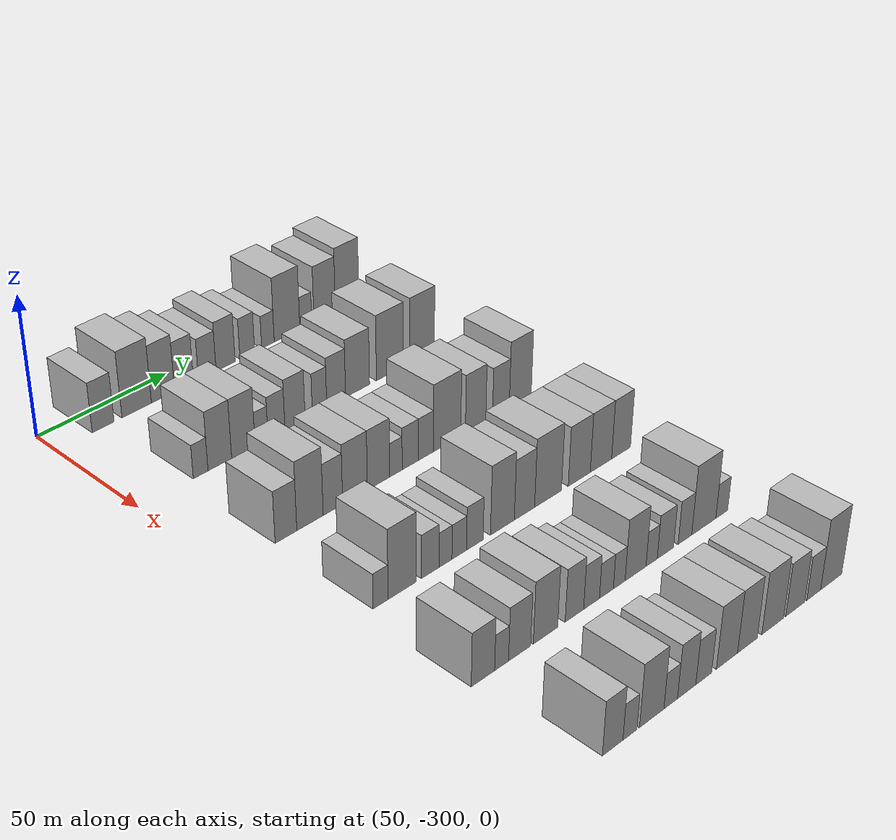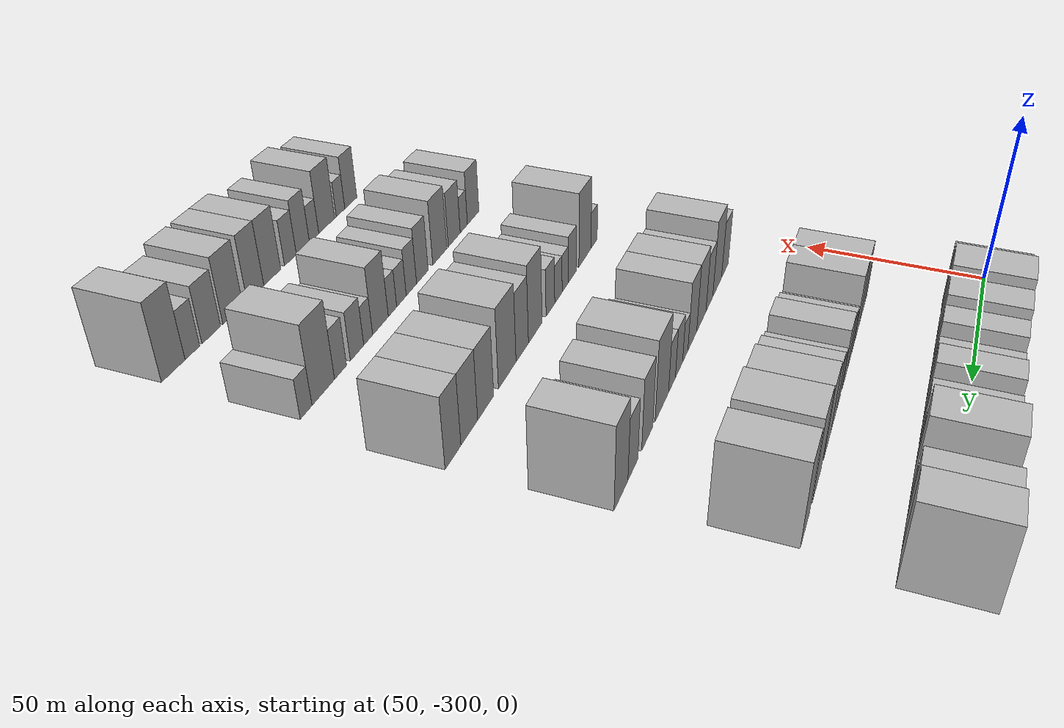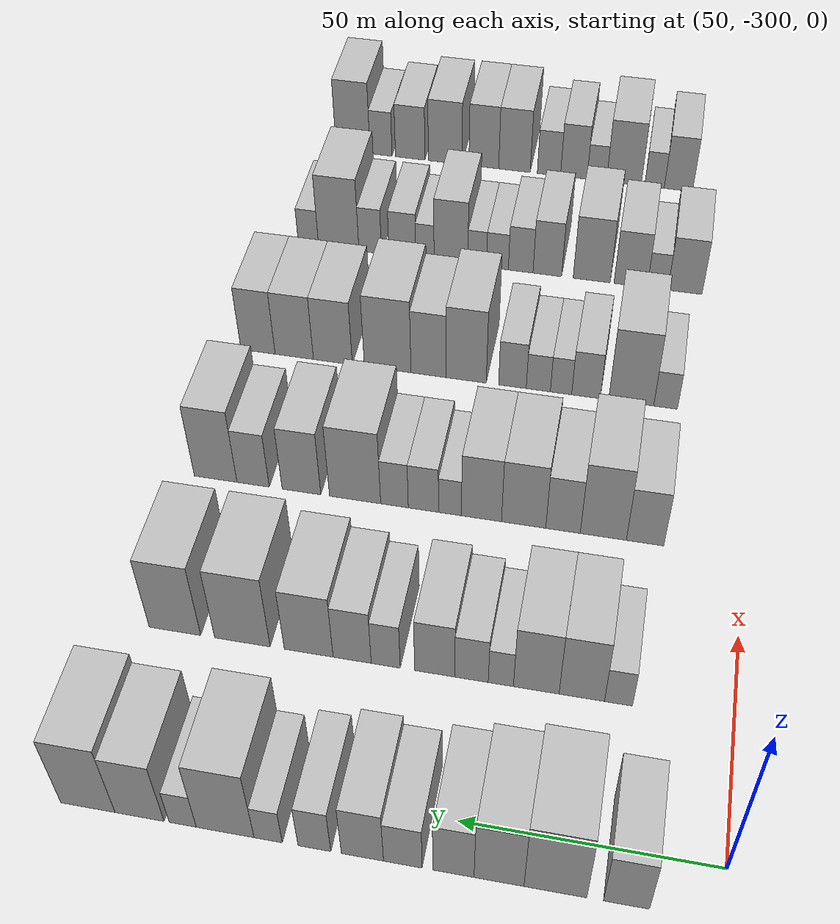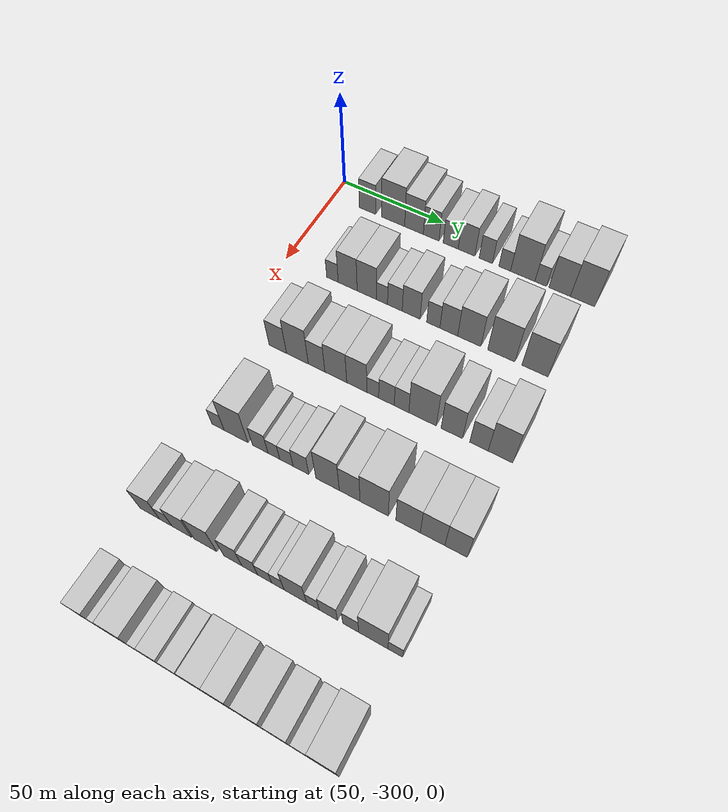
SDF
<sdf version="1.6">
 <world name="default">
  <model name="building_36">
   <static>1</static>
   <pose>50.0000 -282.5300 0 0.000000 0.000000 0.000000</pose>
   <link name="link">
    <pose>0 0 9.00 0 0 0</pose>
    <collision name="collision"><geometry><box><size>20.0000 8.2965 18.0000</size></box></geometry></collision>
    <visual name="visual">
     <cast_shadows>0</cast_shadows>
     <geometry><box><size>20.0000 8.2965 18.0000</size></box></geometry>
     <material>
      <script>
       <uri>model://HANNAS_wall/materials/scripts</uri>
       <uri>model://HANNAS_wall/materials/textures</uri>
       <name>vrc/HANNAS_wall</name>
      </script>
     </material>
    </visual>
   </link>
  </model>
  <model name="building_37">
   <static>1</static>
   <pose>50.0000 -269.6448 0 0.000000 0.000000 0.000000</pose>
   <link name="link">
    <pose>0 0 12.00 0 0 0</pose>
    <collision name="collision"><geometry><box><size>20.0000 11.4740 24.0000</size></box></geometry></collision>
    <visual name="visual">
     <cast_shadows>0</cast_shadows>
     <geometry><box><size>20.0000 11.4740 24.0000</size></box></geometry>
     <material>
      <script>
       <uri>model://HANNAS_wall/materials/scripts</uri>
       <uri>model://HANNAS_wall/materials/textures</uri>
       <name>vrc/HANNAS_wall</name>
      </script>
     </material>
    </visual>
   </link>
  </model>
  <model name="building_38">
   <static>1</static>
   <pose>50.0000 -259.3152 0 0.000000 0.000000 0.000000</pose>
   <link name="link">
    <pose>0 0 10.50 0 0 0</pose>
    <collision name="collision"><geometry><box><size>20.0000 9.1851 21.0000</size></box></geometry></collision>
    <visual name="visual">
     <cast_shadows>0</cast_shadows>
     <geometry><box><size>20.0000 9.1851 21.0000</size></box></geometry>
     <material>
      <script>
       <uri>model://HANNAS_wall/materials/scripts</uri>
       <uri>model://HANNAS_wall/materials/textures</uri>
       <name>vrc/HANNAS_wall</name>
      </script>
     </material>
    </visual>
   </link>
  </model>
  <model name="building_39">
   <static>1</static>
   <pose>50.0000 -250.9108 0 0.000000 0.000000 0.000000</pose>
   <link name="link">
    <pose>0 0 9.00 0 0 0</pose>
    <collision name="collision"><geometry><box><size>20.0000 7.6237 18.0000</size></box></geometry></collision>
    <visual name="visual">
     <cast_shadows>0</cast_shadows>
     <geometry><box><size>20.0000 7.6237 18.0000</size></box></geometry>
     <material>
      <script>
       <uri>model://HANNAS_wall/materials/scripts</uri>
       <uri>model://HANNAS_wall/materials/textures</uri>
       <name>vrc/HANNAS_wall</name>
      </script>
     </material>
    </visual>
   </link>
  </model>
  <model name="building_40">
   <static>1</static>
   <pose>50.0000 -241.4930 0 0.000000 0.000000 0.000000</pose>
   <link name="link">
    <pose>0 0 7.50 0 0 0</pose>
    <collision name="collision"><geometry><box><size>20.0000 7.2121 15.0000</size></box></geometry></collision>
    <visual name="visual">
     <cast_shadows>0</cast_shadows>
     <geometry><box><size>20.0000 7.2121 15.0000</size></box></geometry>
     <material>
      <script>
       <uri>model://HANNAS_wall/materials/scripts</uri>
       <uri>model://HANNAS_wall/materials/textures</uri>
       <name>vrc/HANNAS_wall</name>
      </script>
     </material>
    </visual>
   </link>
  </model>
  <model name="building_41">
   <static>1</static>
   <pose>50.0000 -233.9153 0 0.000000 0.000000 0.000000</pose>
   <link name="link">
    <pose>0 0 9.00 0 0 0</pose>
    <collision name="collision"><geometry><box><size>20.0000 7.9432 18.0000</size></box></geometry></collision>
    <visual name="visual">
     <cast_shadows>0</cast_shadows>
     <geometry><box><size>20.0000 7.9432 18.0000</size></box></geometry>
     <material>
      <script>
       <uri>model://HANNAS_wall/materials/scripts</uri>
       <uri>model://HANNAS_wall/materials/textures</uri>
       <name>vrc/HANNAS_wall</name>
      </script>
     </material>
    </visual>
   </link>
  </model>
  <model name="building_42">
   <static>1</static>
   <pose>50.0000 -224.8299 0 0.000000 0.000000 0.000000</pose>
   <link name="link">
    <pose>0 0 7.50 0 0 0</pose>
    <collision name="collision"><geometry><box><size>20.0000 6.2277 15.0000</size></box></geometry></collision>
    <visual name="visual">
     <cast_shadows>0</cast_shadows>
     <geometry><box><size>20.0000 6.2277 15.0000</size></box></geometry>
     <material>
      <script>
       <uri>model://HANNAS_wall/materials/scripts</uri>
       <uri>model://HANNAS_wall/materials/textures</uri>
       <name>vrc/HANNAS_wall</name>
      </script>
     </material>
    </visual>
   </link>
  </model>
  <model name="building_43">
   <static>1</static>
   <pose>50.0000 -216.0131 0 0.000000 0.000000 0.000000</pose>
   <link name="link">
    <pose>0 0 6.00 0 0 0</pose>
    <collision name="collision"><geometry><box><size>20.0000 5.4060 12.0000</size></box></geometry></collision>
    <visual name="visual">
     <cast_shadows>0</cast_shadows>
     <geometry><box><size>20.0000 5.4060 12.0000</size></box></geometry>
     <material>
      <script>
       <uri>model://HANNAS_wall/materials/scripts</uri>
       <uri>model://HANNAS_wall/materials/textures</uri>
       <name>vrc/HANNAS_wall</name>
      </script>
     </material>
    </visual>
   </link>
  </model>
  <model name="building_44">
   <static>1</static>
   <pose>50.0000 -207.7265 0 0.000000 0.000000 0.000000</pose>
   <link name="link">
    <pose>0 0 12.00 0 0 0</pose>
    <collision name="collision"><geometry><box><size>20.0000 11.1671 24.0000</size></box></geometry></collision>
    <visual name="visual">
     <cast_shadows>0</cast_shadows>
     <geometry><box><size>20.0000 11.1671 24.0000</size></box></geometry>
     <material>
      <script>
       <uri>model://HANNAS_wall/materials/scripts</uri>
       <uri>model://HANNAS_wall/materials/textures</uri>
       <name>vrc/HANNAS_wall</name>
      </script>
     </material>
    </visual>
   </link>
  </model>
  <model name="building_45">
   <static>1</static>
   <pose>50.0000 -199.4984 0 0.000000 0.000000 0.000000</pose>
   <link name="link">
    <pose>0 0 6.00 0 0 0</pose>
    <collision name="collision"><geometry><box><size>20.0000 5.2892 12.0000</size></box></geometry></collision>
    <visual name="visual">
     <cast_shadows>0</cast_shadows>
     <geometry><box><size>20.0000 5.2892 12.0000</size></box></geometry>
     <material>
      <script>
       <uri>model://HANNAS_wall/materials/scripts</uri>
       <uri>model://HANNAS_wall/materials/textures</uri>
       <name>vrc/HANNAS_wall</name>
      </script>
     </material>
    </visual>
   </link>
  </model>
  <model name="building_46">
   <static>1</static>
   <pose>50.0000 -191.0502 0 0.000000 0.000000 0.000000</pose>
   <link name="link">
    <pose>0 0 10.50 0 0 0</pose>
    <collision name="collision"><geometry><box><size>20.0000 9.6072 21.0000</size></box></geometry></collision>
    <visual name="visual">
     <cast_shadows>0</cast_shadows>
     <geometry><box><size>20.0000 9.6072 21.0000</size></box></geometry>
     <material>
      <script>
       <uri>model://HANNAS_wall/materials/scripts</uri>
       <uri>model://HANNAS_wall/materials/textures</uri>
       <name>vrc/HANNAS_wall</name>
      </script>
     </material>
    </visual>
   </link>
  </model>
  <model name="building_47">
   <static>1</static>
   <pose>50.0000 -180.8765 0 0.000000 0.000000 0.000000</pose>
   <link name="link">
    <pose>0 0 12.00 0 0 0</pose>
    <collision name="collision"><geometry><box><size>20.0000 10.7401 24.0000</size></box></geometry></collision>
    <visual name="visual">
     <cast_shadows>0</cast_shadows>
     <geometry><box><size>20.0000 10.7401 24.0000</size></box></geometry>
     <material>
      <script>
       <uri>model://HANNAS_wall/materials/scripts</uri>
       <uri>model://HANNAS_wall/materials/textures</uri>
       <name>vrc/HANNAS_wall</name>
      </script>
     </material>
    </visual>
   </link>
  </model>
  <model name="building_177">
   <static>1</static>
   <pose>90.0000 -277.1181 0 0.000000 0.000000 0.000000</pose>
   <link name="link">
    <pose>0 0 6.00 0 0 0</pose>
    <collision name="collision"><geometry><box><size>20.0000 5.5985 12.0000</size></box></geometry></collision>
    <visual name="visual">
     <cast_shadows>0</cast_shadows>
     <geometry><box><size>20.0000 5.5985 12.0000</size></box></geometry>
     <material>
      <script>
       <uri>model://HANNAS_wall/materials/scripts</uri>
       <uri>model://HANNAS_wall/materials/textures</uri>
       <name>vrc/HANNAS_wall</name>
      </script>
     </material>
    </visual>
   </link>
  </model>
  <model name="building_178">
   <static>1</static>
   <pose>90.0000 -269.7640 0 0.000000 0.000000 0.000000</pose>
   <link name="link">
    <pose>0 0 10.50 0 0 0</pose>
    <collision name="collision"><geometry><box><size>20.0000 9.1098 21.0000</size></box></geometry></collision>
    <visual name="visual">
     <cast_shadows>0</cast_shadows>
     <geometry><box><size>20.0000 9.1098 21.0000</size></box></geometry>
     <material>
      <script>
       <uri>model://HANNAS_wall/materials/scripts</uri>
       <uri>model://HANNAS_wall/materials/textures</uri>
       <name>vrc/HANNAS_wall</name>
      </script>
     </material>
    </visual>
   </link>
  </model>
  <model name="building_179">
   <static>1</static>
   <pose>90.0000 -260.5964 0 0.000000 0.000000 0.000000</pose>
   <link name="link">
    <pose>0 0 10.50 0 0 0</pose>
    <collision name="collision"><geometry><box><size>20.0000 9.2252 21.0000</size></box></geometry></collision>
    <visual name="visual">
     <cast_shadows>0</cast_shadows>
     <geometry><box><size>20.0000 9.2252 21.0000</size></box></geometry>
     <material>
      <script>
       <uri>model://HANNAS_wall/materials/scripts</uri>
       <uri>model://HANNAS_wall/materials/textures</uri>
       <name>vrc/HANNAS_wall</name>
      </script>
     </material>
    </visual>
   </link>
  </model>
  <model name="building_180">
   <static>1</static>
   <pose>90.0000 -253.4149 0 0.000000 0.000000 0.000000</pose>
   <link name="link">
    <pose>0 0 6.00 0 0 0</pose>
    <collision name="collision"><geometry><box><size>20.0000 5.1378 12.0000</size></box></geometry></collision>
    <visual name="visual">
     <cast_shadows>0</cast_shadows>
     <geometry><box><size>20.0000 5.1378 12.0000</size></box></geometry>
     <material>
      <script>
       <uri>model://HANNAS_wall/materials/scripts</uri>
       <uri>model://HANNAS_wall/materials/textures</uri>
       <name>vrc/HANNAS_wall</name>
      </script>
     </material>
    </visual>
   </link>
  </model>
  <model name="building_181">
   <static>1</static>
   <pose>90.0000 -247.4250 0 0.000000 0.000000 0.000000</pose>
   <link name="link">
    <pose>0 0 7.50 0 0 0</pose>
    <collision name="collision"><geometry><box><size>20.0000 6.8422 15.0000</size></box></geometry></collision>
    <visual name="visual">
     <cast_shadows>0</cast_shadows>
     <geometry><box><size>20.0000 6.8422 15.0000</size></box></geometry>
     <material>
      <script>
       <uri>model://HANNAS_wall/materials/scripts</uri>
       <uri>model://HANNAS_wall/materials/textures</uri>
       <name>vrc/HANNAS_wall</name>
      </script>
     </material>
    </visual>
   </link>
  </model>
  <model name="building_182">
   <static>1</static>
   <pose>90.0000 -239.8899 0 0.000000 0.000000 0.000000</pose>
   <link name="link">
    <pose>0 0 9.00 0 0 0</pose>
    <collision name="collision"><geometry><box><size>20.0000 8.2280 18.0000</size></box></geometry></collision>
    <visual name="visual">
     <cast_shadows>0</cast_shadows>
     <geometry><box><size>20.0000 8.2280 18.0000</size></box></geometry>
     <material>
      <script>
       <uri>model://HANNAS_wall/materials/scripts</uri>
       <uri>model://HANNAS_wall/materials/textures</uri>
       <name>vrc/HANNAS_wall</name>
      </script>
     </material>
    </visual>
   </link>
  </model>
  <model name="building_183">
   <static>1</static>
   <pose>90.0000 -229.7663 0 0.000000 0.000000 0.000000</pose>
   <link name="link">
    <pose>0 0 7.50 0 0 0</pose>
    <collision name="collision"><geometry><box><size>20.0000 6.0192 15.0000</size></box></geometry></collision>
    <visual name="visual">
     <cast_shadows>0</cast_shadows>
     <geometry><box><size>20.0000 6.0192 15.0000</size></box></geometry>
     <material>
      <script>
       <uri>model://HANNAS_wall/materials/scripts</uri>
       <uri>model://HANNAS_wall/materials/textures</uri>
       <name>vrc/HANNAS_wall</name>
      </script>
     </material>
    </visual>
   </link>
  </model>
  <model name="building_184">
   <static>1</static>
   <pose>90.0000 -222.7791 0 0.000000 0.000000 0.000000</pose>
   <link name="link">
    <pose>0 0 9.00 0 0 0</pose>
    <collision name="collision"><geometry><box><size>20.0000 7.9551 18.0000</size></box></geometry></collision>
    <visual name="visual">
     <cast_shadows>0</cast_shadows>
     <geometry><box><size>20.0000 7.9551 18.0000</size></box></geometry>
     <material>
      <script>
       <uri>model://HANNAS_wall/materials/scripts</uri>
       <uri>model://HANNAS_wall/materials/textures</uri>
       <name>vrc/HANNAS_wall</name>
      </script>
     </material>
    </visual>
   </link>
  </model>
  <model name="building_185">
   <static>1</static>
   <pose>90.0000 -213.6581 0 0.000000 0.000000 0.000000</pose>
   <link name="link">
    <pose>0 0 10.50 0 0 0</pose>
    <collision name="collision"><geometry><box><size>20.0000 10.2871 21.0000</size></box></geometry></collision>
    <visual name="visual">
     <cast_shadows>0</cast_shadows>
     <geometry><box><size>20.0000 10.2871 21.0000</size></box></geometry>
     <material>
      <script>
       <uri>model://HANNAS_wall/materials/scripts</uri>
       <uri>model://HANNAS_wall/materials/textures</uri>
       <name>vrc/HANNAS_wall</name>
      </script>
     </material>
    </visual>
   </link>
  </model>
  <model name="building_186">
   <static>1</static>
   <pose>90.0000 -199.5994 0 0.000000 0.000000 0.000000</pose>
   <link name="link">
    <pose>0 0 12.00 0 0 0</pose>
    <collision name="collision"><geometry><box><size>20.0000 11.8302 24.0000</size></box></geometry></collision>
    <visual name="visual">
     <cast_shadows>0</cast_shadows>
     <geometry><box><size>20.0000 11.8302 24.0000</size></box></geometry>
     <material>
      <script>
       <uri>model://HANNAS_wall/materials/scripts</uri>
       <uri>model://HANNAS_wall/materials/textures</uri>
       <name>vrc/HANNAS_wall</name>
      </script>
     </material>
    </visual>
   </link>
  </model>
  <model name="building_187">
   <static>1</static>
   <pose>90.0000 -185.1333 0 0.000000 0.000000 0.000000</pose>
   <link name="link">
    <pose>0 0 12.00 0 0 0</pose>
    <collision name="collision"><geometry><box><size>20.0000 11.1019 24.0000</size></box></geometry></collision>
    <visual name="visual">
     <cast_shadows>0</cast_shadows>
     <geometry><box><size>20.0000 11.1019 24.0000</size></box></geometry>
     <material>
      <script>
       <uri>model://HANNAS_wall/materials/scripts</uri>
       <uri>model://HANNAS_wall/materials/textures</uri>
       <name>vrc/HANNAS_wall</name>
      </script>
     </material>
    </visual>
   </link>
  </model>
  <model name="building_310">
   <static>1</static>
   <pose>130.0000 -278.9701 0 0.000000 0.000000 0.000000</pose>
   <link name="link">
    <pose>0 0 9.00 0 0 0</pose>
    <collision name="collision"><geometry><box><size>20.0000 8.1725 18.0000</size></box></geometry></collision>
    <visual name="visual">
     <cast_shadows>0</cast_shadows>
     <geometry><box><size>20.0000 8.1725 18.0000</size></box></geometry>
     <material>
      <script>
       <uri>model://HANNAS_wall/materials/scripts</uri>
       <uri>model://HANNAS_wall/materials/textures</uri>
       <name>vrc/HANNAS_wall</name>
      </script>
     </material>
    </visual>
   </link>
  </model>
  <model name="building_311">
   <static>1</static>
   <pose>130.0000 -269.8253 0 0.000000 0.000000 0.000000</pose>
   <link name="link">
    <pose>0 0 12.00 0 0 0</pose>
    <collision name="collision"><geometry><box><size>20.0000 10.1171 24.0000</size></box></geometry></collision>
    <visual name="visual">
     <cast_shadows>0</cast_shadows>
     <geometry><box><size>20.0000 10.1171 24.0000</size></box></geometry>
     <material>
      <script>
       <uri>model://HANNAS_wall/materials/scripts</uri>
       <uri>model://HANNAS_wall/materials/textures</uri>
       <name>vrc/HANNAS_wall</name>
      </script>
     </material>
    </visual>
   </link>
  </model>
  <model name="building_312">
   <static>1</static>
   <pose>130.0000 -260.9681 0 0.000000 0.000000 0.000000</pose>
   <link name="link">
    <pose>0 0 9.00 0 0 0</pose>
    <collision name="collision"><geometry><box><size>20.0000 7.5974 18.0000</size></box></geometry></collision>
    <visual name="visual">
     <cast_shadows>0</cast_shadows>
     <geometry><box><size>20.0000 7.5974 18.0000</size></box></geometry>
     <material>
      <script>
       <uri>model://HANNAS_wall/materials/scripts</uri>
       <uri>model://HANNAS_wall/materials/textures</uri>
       <name>vrc/HANNAS_wall</name>
      </script>
     </material>
    </visual>
   </link>
  </model>
  <model name="building_313">
   <static>1</static>
   <pose>130.0000 -252.2475 0 0.000000 0.000000 0.000000</pose>
   <link name="link">
    <pose>0 0 10.50 0 0 0</pose>
    <collision name="collision"><geometry><box><size>20.0000 9.8438 21.0000</size></box></geometry></collision>
    <visual name="visual">
     <cast_shadows>0</cast_shadows>
     <geometry><box><size>20.0000 9.8438 21.0000</size></box></geometry>
     <material>
      <script>
       <uri>model://HANNAS_wall/materials/scripts</uri>
       <uri>model://HANNAS_wall/materials/textures</uri>
       <name>vrc/HANNAS_wall</name>
      </script>
     </material>
    </visual>
   </link>
  </model>
  <model name="building_314">
   <static>1</static>
   <pose>130.0000 -242.8253 0 0.000000 0.000000 0.000000</pose>
   <link name="link">
    <pose>0 0 10.50 0 0 0</pose>
    <collision name="collision"><geometry><box><size>20.0000 9.0007 21.0000</size></box></geometry></collision>
    <visual name="visual">
     <cast_shadows>0</cast_shadows>
     <geometry><box><size>20.0000 9.0007 21.0000</size></box></geometry>
     <material>
      <script>
       <uri>model://HANNAS_wall/materials/scripts</uri>
       <uri>model://HANNAS_wall/materials/textures</uri>
       <name>vrc/HANNAS_wall</name>
      </script>
     </material>
    </visual>
   </link>
  </model>
  <model name="building_315">
   <static>1</static>
   <pose>130.0000 -235.7520 0 0.000000 0.000000 0.000000</pose>
   <link name="link">
    <pose>0 0 6.00 0 0 0</pose>
    <collision name="collision"><geometry><box><size>20.0000 5.1459 12.0000</size></box></geometry></collision>
    <visual name="visual">
     <cast_shadows>0</cast_shadows>
     <geometry><box><size>20.0000 5.1459 12.0000</size></box></geometry>
     <material>
      <script>
       <uri>model://HANNAS_wall/materials/scripts</uri>
       <uri>model://HANNAS_wall/materials/textures</uri>
       <name>vrc/HANNAS_wall</name>
      </script>
     </material>
    </visual>
   </link>
  </model>
  <model name="building_316">
   <static>1</static>
   <pose>130.0000 -229.7714 0 0.000000 0.000000 0.000000</pose>
   <link name="link">
    <pose>0 0 7.50 0 0 0</pose>
    <collision name="collision"><geometry><box><size>20.0000 6.8153 15.0000</size></box></geometry></collision>
    <visual name="visual">
     <cast_shadows>0</cast_shadows>
     <geometry><box><size>20.0000 6.8153 15.0000</size></box></geometry>
     <material>
      <script>
       <uri>model://HANNAS_wall/materials/scripts</uri>
       <uri>model://HANNAS_wall/materials/textures</uri>
       <name>vrc/HANNAS_wall</name>
      </script>
     </material>
    </visual>
   </link>
  </model>
  <model name="building_317">
   <static>1</static>
   <pose>130.0000 -223.2239 0 0.000000 0.000000 0.000000</pose>
   <link name="link">
    <pose>0 0 7.50 0 0 0</pose>
    <collision name="collision"><geometry><box><size>20.0000 6.2797 15.0000</size></box></geometry></collision>
    <visual name="visual">
     <cast_shadows>0</cast_shadows>
     <geometry><box><size>20.0000 6.2797 15.0000</size></box></geometry>
     <material>
      <script>
       <uri>model://HANNAS_wall/materials/scripts</uri>
       <uri>model://HANNAS_wall/materials/textures</uri>
       <name>vrc/HANNAS_wall</name>
      </script>
     </material>
    </visual>
   </link>
  </model>
  <model name="building_318">
   <static>1</static>
   <pose>130.0000 -214.2287 0 0.000000 0.000000 0.000000</pose>
   <link name="link">
    <pose>0 0 12.00 0 0 0</pose>
    <collision name="collision"><geometry><box><size>20.0000 11.7106 24.0000</size></box></geometry></collision>
    <visual name="visual">
     <cast_shadows>0</cast_shadows>
     <geometry><box><size>20.0000 11.7106 24.0000</size></box></geometry>
     <material>
      <script>
       <uri>model://HANNAS_wall/materials/scripts</uri>
       <uri>model://HANNAS_wall/materials/textures</uri>
       <name>vrc/HANNAS_wall</name>
      </script>
     </material>
    </visual>
   </link>
  </model>
  <model name="building_319">
   <static>1</static>
   <pose>130.0000 -201.9021 0 0.000000 0.000000 0.000000</pose>
   <link name="link">
    <pose>0 0 10.50 0 0 0</pose>
    <collision name="collision"><geometry><box><size>20.0000 8.9425 21.0000</size></box></geometry></collision>
    <visual name="visual">
     <cast_shadows>0</cast_shadows>
     <geometry><box><size>20.0000 8.9425 21.0000</size></box></geometry>
     <material>
      <script>
       <uri>model://HANNAS_wall/materials/scripts</uri>
       <uri>model://HANNAS_wall/materials/textures</uri>
       <name>vrc/HANNAS_wall</name>
      </script>
     </material>
    </visual>
   </link>
  </model>
  <model name="building_320">
   <static>1</static>
   <pose>130.0000 -190.6625 0 0.000000 0.000000 0.000000</pose>
   <link name="link">
    <pose>0 0 9.00 0 0 0</pose>
    <collision name="collision"><geometry><box><size>20.0000 7.5368 18.0000</size></box></geometry></collision>
    <visual name="visual">
     <cast_shadows>0</cast_shadows>
     <geometry><box><size>20.0000 7.5368 18.0000</size></box></geometry>
     <material>
      <script>
       <uri>model://HANNAS_wall/materials/scripts</uri>
       <uri>model://HANNAS_wall/materials/textures</uri>
       <name>vrc/HANNAS_wall</name>
      </script>
     </material>
    </visual>
   </link>
  </model>
  <model name="building_321">
   <static>1</static>
   <pose>130.0000 -181.8974 0 0.000000 0.000000 0.000000</pose>
   <link name="link">
    <pose>0 0 12.00 0 0 0</pose>
    <collision name="collision"><geometry><box><size>20.0000 9.9933 24.0000</size></box></geometry></collision>
    <visual name="visual">
     <cast_shadows>0</cast_shadows>
     <geometry><box><size>20.0000 9.9933 24.0000</size></box></geometry>
     <material>
      <script>
       <uri>model://HANNAS_wall/materials/scripts</uri>
       <uri>model://HANNAS_wall/materials/textures</uri>
       <name>vrc/HANNAS_wall</name>
      </script>
     </material>
    </visual>
   </link>
  </model>
  <model name="building_445">
   <static>1</static>
   <pose>170.0000 -280.3590 0 0.000000 0.000000 0.000000</pose>
   <link name="link">
    <pose>0 0 6.00 0 0 0</pose>
    <collision name="collision"><geometry><box><size>20.0000 5.6078 12.0000</size></box></geometry></collision>
    <visual name="visual">
     <cast_shadows>0</cast_shadows>
     <geometry><box><size>20.0000 5.6078 12.0000</size></box></geometry>
     <material>
      <script>
       <uri>model://HANNAS_wall/materials/scripts</uri>
       <uri>model://HANNAS_wall/materials/textures</uri>
       <name>vrc/HANNAS_wall</name>
      </script>
     </material>
    </visual>
   </link>
  </model>
  <model name="building_446">
   <static>1</static>
   <pose>170.0000 -272.2094 0 0.000000 0.000000 0.000000</pose>
   <link name="link">
    <pose>0 0 12.00 0 0 0</pose>
    <collision name="collision"><geometry><box><size>20.0000 10.6914 24.0000</size></box></geometry></collision>
    <visual name="visual">
     <cast_shadows>0</cast_shadows>
     <geometry><box><size>20.0000 10.6914 24.0000</size></box></geometry>
     <material>
      <script>
       <uri>model://HANNAS_wall/materials/scripts</uri>
       <uri>model://HANNAS_wall/materials/textures</uri>
       <name>vrc/HANNAS_wall</name>
      </script>
     </material>
    </visual>
   </link>
  </model>
  <model name="building_447">
   <static>1</static>
   <pose>170.0000 -261.4436 0 0.000000 0.000000 0.000000</pose>
   <link name="link">
    <pose>0 0 7.50 0 0 0</pose>
    <collision name="collision"><geometry><box><size>20.0000 6.8402 15.0000</size></box></geometry></collision>
    <visual name="visual">
     <cast_shadows>0</cast_shadows>
     <geometry><box><size>20.0000 6.8402 15.0000</size></box></geometry>
     <material>
      <script>
       <uri>model://HANNAS_wall/materials/scripts</uri>
       <uri>model://HANNAS_wall/materials/textures</uri>
       <name>vrc/HANNAS_wall</name>
      </script>
     </material>
    </visual>
   </link>
  </model>
  <model name="building_448">
   <static>1</static>
   <pose>170.0000 -255.4670 0 0.000000 0.000000 0.000000</pose>
   <link name="link">
    <pose>0 0 6.00 0 0 0</pose>
    <collision name="collision"><geometry><box><size>20.0000 5.1130 12.0000</size></box></geometry></collision>
    <visual name="visual">
     <cast_shadows>0</cast_shadows>
     <geometry><box><size>20.0000 5.1130 12.0000</size></box></geometry>
     <material>
      <script>
       <uri>model://HANNAS_wall/materials/scripts</uri>
       <uri>model://HANNAS_wall/materials/textures</uri>
       <name>vrc/HANNAS_wall</name>
      </script>
     </material>
    </visual>
   </link>
  </model>
  <model name="building_449">
   <static>1</static>
   <pose>170.0000 -249.9966 0 0.000000 0.000000 0.000000</pose>
   <link name="link">
    <pose>0 0 6.00 0 0 0</pose>
    <collision name="collision"><geometry><box><size>20.0000 5.8280 12.0000</size></box></geometry></collision>
    <visual name="visual">
     <cast_shadows>0</cast_shadows>
     <geometry><box><size>20.0000 5.8280 12.0000</size></box></geometry>
     <material>
      <script>
       <uri>model://HANNAS_wall/materials/scripts</uri>
       <uri>model://HANNAS_wall/materials/textures</uri>
       <name>vrc/HANNAS_wall</name>
      </script>
     </material>
    </visual>
   </link>
  </model>
  <model name="building_450">
   <static>1</static>
   <pose>170.0000 -243.7324 0 0.000000 0.000000 0.000000</pose>
   <link name="link">
    <pose>0 0 7.50 0 0 0</pose>
    <collision name="collision"><geometry><box><size>20.0000 6.7004 15.0000</size></box></geometry></collision>
    <visual name="visual">
     <cast_shadows>0</cast_shadows>
     <geometry><box><size>20.0000 6.7004 15.0000</size></box></geometry>
     <material>
      <script>
       <uri>model://HANNAS_wall/materials/scripts</uri>
       <uri>model://HANNAS_wall/materials/textures</uri>
       <name>vrc/HANNAS_wall</name>
      </script>
     </material>
    </visual>
   </link>
  </model>
  <model name="building_451">
   <static>1</static>
   <pose>170.0000 -232.4463 0 0.000000 0.000000 0.000000</pose>
   <link name="link">
    <pose>0 0 12.00 0 0 0</pose>
    <collision name="collision"><geometry><box><size>20.0000 9.8717 24.0000</size></box></geometry></collision>
    <visual name="visual">
     <cast_shadows>0</cast_shadows>
     <geometry><box><size>20.0000 9.8717 24.0000</size></box></geometry>
     <material>
      <script>
       <uri>model://HANNAS_wall/materials/scripts</uri>
       <uri>model://HANNAS_wall/materials/textures</uri>
       <name>vrc/HANNAS_wall</name>
      </script>
     </material>
    </visual>
   </link>
  </model>
  <model name="building_452">
   <static>1</static>
   <pose>170.0000 -223.2296 0 0.000000 0.000000 0.000000</pose>
   <link name="link">
    <pose>0 0 10.50 0 0 0</pose>
    <collision name="collision"><geometry><box><size>20.0000 8.5618 21.0000</size></box></geometry></collision>
    <visual name="visual">
     <cast_shadows>0</cast_shadows>
     <geometry><box><size>20.0000 8.5618 21.0000</size></box></geometry>
     <material>
      <script>
       <uri>model://HANNAS_wall/materials/scripts</uri>
       <uri>model://HANNAS_wall/materials/textures</uri>
       <name>vrc/HANNAS_wall</name>
      </script>
     </material>
    </visual>
   </link>
  </model>
  <model name="building_453">
   <static>1</static>
   <pose>170.0000 -213.1754 0 0.000000 0.000000 0.000000</pose>
   <link name="link">
    <pose>0 0 12.00 0 0 0</pose>
    <collision name="collision"><geometry><box><size>20.0000 11.5465 24.0000</size></box></geometry></collision>
    <visual name="visual">
     <cast_shadows>0</cast_shadows>
     <geometry><box><size>20.0000 11.5465 24.0000</size></box></geometry>
     <material>
      <script>
       <uri>model://HANNAS_wall/materials/scripts</uri>
       <uri>model://HANNAS_wall/materials/textures</uri>
       <name>vrc/HANNAS_wall</name>
      </script>
     </material>
    </visual>
   </link>
  </model>
  <model name="building_454">
   <static>1</static>
   <pose>170.0000 -199.5368 0 0.000000 0.000000 0.000000</pose>
   <link name="link">
    <pose>0 0 10.50 0 0 0</pose>
    <collision name="collision"><geometry><box><size>20.0000 9.7307 21.0000</size></box></geometry></collision>
    <visual name="visual">
     <cast_shadows>0</cast_shadows>
     <geometry><box><size>20.0000 9.7307 21.0000</size></box></geometry>
     <material>
      <script>
       <uri>model://HANNAS_wall/materials/scripts</uri>
       <uri>model://HANNAS_wall/materials/textures</uri>
       <name>vrc/HANNAS_wall</name>
      </script>
     </material>
    </visual>
   </link>
  </model>
  <model name="building_455">
   <static>1</static>
   <pose>170.0000 -189.8503 0 0.000000 0.000000 0.000000</pose>
   <link name="link">
    <pose>0 0 10.50 0 0 0</pose>
    <collision name="collision"><geometry><box><size>20.0000 9.6422 21.0000</size></box></geometry></collision>
    <visual name="visual">
     <cast_shadows>0</cast_shadows>
     <geometry><box><size>20.0000 9.6422 21.0000</size></box></geometry>
     <material>
      <script>
       <uri>model://HANNAS_wall/materials/scripts</uri>
       <uri>model://HANNAS_wall/materials/textures</uri>
       <name>vrc/HANNAS_wall</name>
      </script>
     </material>
    </visual>
   </link>
  </model>
  <model name="building_456">
   <static>1</static>
   <pose>170.0000 -180.6937 0 0.000000 0.000000 0.000000</pose>
   <link name="link">
    <pose>0 0 10.50 0 0 0</pose>
    <collision name="collision"><geometry><box><size>20.0000 8.6711 21.0000</size></box></geometry></collision>
    <visual name="visual">
     <cast_shadows>0</cast_shadows>
     <geometry><box><size>20.0000 8.6711 21.0000</size></box></geometry>
     <material>
      <script>
       <uri>model://HANNAS_wall/materials/scripts</uri>
       <uri>model://HANNAS_wall/materials/textures</uri>
       <name>vrc/HANNAS_wall</name>
      </script>
     </material>
    </visual>
   </link>
  </model>
  <model name="building_580">
   <static>1</static>
   <pose>210.0000 -282.2345 0 0.000000 0.000000 0.000000</pose>
   <link name="link">
    <pose>0 0 9.00 0 0 0</pose>
    <collision name="collision"><geometry><box><size>20.0000 8.6977 18.0000</size></box></geometry></collision>
    <visual name="visual">
     <cast_shadows>0</cast_shadows>
     <geometry><box><size>20.0000 8.6977 18.0000</size></box></geometry>
     <material>
      <script>
       <uri>model://HANNAS_wall/materials/scripts</uri>
       <uri>model://HANNAS_wall/materials/textures</uri>
       <name>vrc/HANNAS_wall</name>
      </script>
     </material>
    </visual>
   </link>
  </model>
  <model name="building_581">
   <static>1</static>
   <pose>210.0000 -275.2519 0 0.000000 0.000000 0.000000</pose>
   <link name="link">
    <pose>0 0 6.00 0 0 0</pose>
    <collision name="collision"><geometry><box><size>20.0000 5.2675 12.0000</size></box></geometry></collision>
    <visual name="visual">
     <cast_shadows>0</cast_shadows>
     <geometry><box><size>20.0000 5.2675 12.0000</size></box></geometry>
     <material>
      <script>
       <uri>model://HANNAS_wall/materials/scripts</uri>
       <uri>model://HANNAS_wall/materials/textures</uri>
       <name>vrc/HANNAS_wall</name>
      </script>
     </material>
    </visual>
   </link>
  </model>
  <model name="building_582">
   <static>1</static>
   <pose>210.0000 -268.3679 0 0.000000 0.000000 0.000000</pose>
   <link name="link">
    <pose>0 0 9.00 0 0 0</pose>
    <collision name="collision"><geometry><box><size>20.0000 8.5005 18.0000</size></box></geometry></collision>
    <visual name="visual">
     <cast_shadows>0</cast_shadows>
     <geometry><box><size>20.0000 8.5005 18.0000</size></box></geometry>
     <material>
      <script>
       <uri>model://HANNAS_wall/materials/scripts</uri>
       <uri>model://HANNAS_wall/materials/textures</uri>
       <name>vrc/HANNAS_wall</name>
      </script>
     </material>
    </visual>
   </link>
  </model>
  <model name="building_583">
   <static>1</static>
   <pose>210.0000 -258.3379 0 0.000000 0.000000 0.000000</pose>
   <link name="link">
    <pose>0 0 10.50 0 0 0</pose>
    <collision name="collision"><geometry><box><size>20.0000 9.5596 21.0000</size></box></geometry></collision>
    <visual name="visual">
     <cast_shadows>0</cast_shadows>
     <geometry><box><size>20.0000 9.5596 21.0000</size></box></geometry>
     <material>
      <script>
       <uri>model://HANNAS_wall/materials/scripts</uri>
       <uri>model://HANNAS_wall/materials/textures</uri>
       <name>vrc/HANNAS_wall</name>
      </script>
     </material>
    </visual>
   </link>
  </model>
  <model name="building_584">
   <static>1</static>
   <pose>210.0000 -246.8302 0 0.000000 0.000000 0.000000</pose>
   <link name="link">
    <pose>0 0 9.00 0 0 0</pose>
    <collision name="collision"><geometry><box><size>20.0000 7.4557 18.0000</size></box></geometry></collision>
    <visual name="visual">
     <cast_shadows>0</cast_shadows>
     <geometry><box><size>20.0000 7.4557 18.0000</size></box></geometry>
     <material>
      <script>
       <uri>model://HANNAS_wall/materials/scripts</uri>
       <uri>model://HANNAS_wall/materials/textures</uri>
       <name>vrc/HANNAS_wall</name>
      </script>
     </material>
    </visual>
   </link>
  </model>
  <model name="building_585">
   <static>1</static>
   <pose>210.0000 -239.8776 0 0.000000 0.000000 0.000000</pose>
   <link name="link">
    <pose>0 0 7.50 0 0 0</pose>
    <collision name="collision"><geometry><box><size>20.0000 6.4495 15.0000</size></box></geometry></collision>
    <visual name="visual">
     <cast_shadows>0</cast_shadows>
     <geometry><box><size>20.0000 6.4495 15.0000</size></box></geometry>
     <material>
      <script>
       <uri>model://HANNAS_wall/materials/scripts</uri>
       <uri>model://HANNAS_wall/materials/textures</uri>
       <name>vrc/HANNAS_wall</name>
      </script>
     </material>
    </visual>
   </link>
  </model>
  <model name="building_586">
   <static>1</static>
   <pose>210.0000 -233.7721 0 0.000000 0.000000 0.000000</pose>
   <link name="link">
    <pose>0 0 6.00 0 0 0</pose>
    <collision name="collision"><geometry><box><size>20.0000 5.7616 12.0000</size></box></geometry></collision>
    <visual name="visual">
     <cast_shadows>0</cast_shadows>
     <geometry><box><size>20.0000 5.7616 12.0000</size></box></geometry>
     <material>
      <script>
       <uri>model://HANNAS_wall/materials/scripts</uri>
       <uri>model://HANNAS_wall/materials/textures</uri>
       <name>vrc/HANNAS_wall</name>
      </script>
     </material>
    </visual>
   </link>
  </model>
  <model name="building_587">
   <static>1</static>
   <pose>210.0000 -228.4240 0 0.000000 0.000000 0.000000</pose>
   <link name="link">
    <pose>0 0 6.00 0 0 0</pose>
    <collision name="collision"><geometry><box><size>20.0000 4.9346 12.0000</size></box></geometry></collision>
    <visual name="visual">
     <cast_shadows>0</cast_shadows>
     <geometry><box><size>20.0000 4.9346 12.0000</size></box></geometry>
     <material>
      <script>
       <uri>model://HANNAS_wall/materials/scripts</uri>
       <uri>model://HANNAS_wall/materials/textures</uri>
       <name>vrc/HANNAS_wall</name>
      </script>
     </material>
    </visual>
   </link>
  </model>
  <model name="building_588">
   <static>1</static>
   <pose>210.0000 -221.5048 0 0.000000 0.000000 0.000000</pose>
   <link name="link">
    <pose>0 0 10.50 0 0 0</pose>
    <collision name="collision"><geometry><box><size>20.0000 8.9036 21.0000</size></box></geometry></collision>
    <visual name="visual">
     <cast_shadows>0</cast_shadows>
     <geometry><box><size>20.0000 8.9036 21.0000</size></box></geometry>
     <material>
      <script>
       <uri>model://HANNAS_wall/materials/scripts</uri>
       <uri>model://HANNAS_wall/materials/textures</uri>
       <name>vrc/HANNAS_wall</name>
      </script>
     </material>
    </visual>
   </link>
  </model>
  <model name="building_589">
   <static>1</static>
   <pose>210.0000 -214.6128 0 0.000000 0.000000 0.000000</pose>
   <link name="link">
    <pose>0 0 6.00 0 0 0</pose>
    <collision name="collision"><geometry><box><size>20.0000 4.8805 12.0000</size></box></geometry></collision>
    <visual name="visual">
     <cast_shadows>0</cast_shadows>
     <geometry><box><size>20.0000 4.8805 12.0000</size></box></geometry>
     <material>
      <script>
       <uri>model://HANNAS_wall/materials/scripts</uri>
       <uri>model://HANNAS_wall/materials/textures</uri>
       <name>vrc/HANNAS_wall</name>
      </script>
     </material>
    </visual>
   </link>
  </model>
  <model name="building_590">
   <static>1</static>
   <pose>210.0000 -208.6121 0 0.000000 0.000000 0.000000</pose>
   <link name="link">
    <pose>0 0 7.50 0 0 0</pose>
    <collision name="collision"><geometry><box><size>20.0000 7.1208 15.0000</size></box></geometry></collision>
    <visual name="visual">
     <cast_shadows>0</cast_shadows>
     <geometry><box><size>20.0000 7.1208 15.0000</size></box></geometry>
     <material>
      <script>
       <uri>model://HANNAS_wall/materials/scripts</uri>
       <uri>model://HANNAS_wall/materials/textures</uri>
       <name>vrc/HANNAS_wall</name>
      </script>
     </material>
    </visual>
   </link>
  </model>
  <model name="building_591">
   <static>1</static>
   <pose>210.0000 -200.0175 0 0.000000 0.000000 0.000000</pose>
   <link name="link">
    <pose>0 0 7.50 0 0 0</pose>
    <collision name="collision"><geometry><box><size>20.0000 6.0683 15.0000</size></box></geometry></collision>
    <visual name="visual">
     <cast_shadows>0</cast_shadows>
     <geometry><box><size>20.0000 6.0683 15.0000</size></box></geometry>
     <material>
      <script>
       <uri>model://HANNAS_wall/materials/scripts</uri>
       <uri>model://HANNAS_wall/materials/textures</uri>
       <name>vrc/HANNAS_wall</name>
      </script>
     </material>
    </visual>
   </link>
  </model>
  <model name="building_592">
   <static>1</static>
   <pose>210.0000 -191.5263 0 0.000000 0.000000 0.000000</pose>
   <link name="link">
    <pose>0 0 12.00 0 0 0</pose>
    <collision name="collision"><geometry><box><size>20.0000 10.9140 24.0000</size></box></geometry></collision>
    <visual name="visual">
     <cast_shadows>0</cast_shadows>
     <geometry><box><size>20.0000 10.9140 24.0000</size></box></geometry>
     <material>
      <script>
       <uri>model://HANNAS_wall/materials/scripts</uri>
       <uri>model://HANNAS_wall/materials/textures</uri>
       <name>vrc/HANNAS_wall</name>
      </script>
     </material>
    </visual>
   </link>
  </model>
  <model name="building_593">
   <static>1</static>
   <pose>210.0000 -183.3308 0 0.000000 0.000000 0.000000</pose>
   <link name="link">
    <pose>0 0 6.00 0 0 0</pose>
    <collision name="collision"><geometry><box><size>20.0000 5.4770 12.0000</size></box></geometry></collision>
    <visual name="visual">
     <cast_shadows>0</cast_shadows>
     <geometry><box><size>20.0000 5.4770 12.0000</size></box></geometry>
     <material>
      <script>
       <uri>model://HANNAS_wall/materials/scripts</uri>
       <uri>model://HANNAS_wall/materials/textures</uri>
       <name>vrc/HANNAS_wall</name>
      </script>
     </material>
    </visual>
   </link>
  </model>
  <model name="building_726">
   <static>1</static>
   <pose>250.0000 -277.7571 0 0.000000 0.000000 0.000000</pose>
   <link name="link">
    <pose>0 0 9.00 0 0 0</pose>
    <collision name="collision"><geometry><box><size>20.0000 7.7408 18.0000</size></box></geometry></collision>
    <visual name="visual">
     <cast_shadows>0</cast_shadows>
     <geometry><box><size>20.0000 7.7408 18.0000</size></box></geometry>
     <material>
      <script>
       <uri>model://HANNAS_wall/materials/scripts</uri>
       <uri>model://HANNAS_wall/materials/textures</uri>
       <name>vrc/HANNAS_wall</name>
      </script>
     </material>
    </visual>
   </link>
  </model>
  <model name="building_727">
   <static>1</static>
   <pose>250.0000 -271.2086 0 0.000000 0.000000 0.000000</pose>
   <link name="link">
    <pose>0 0 6.00 0 0 0</pose>
    <collision name="collision"><geometry><box><size>20.0000 5.3563 12.0000</size></box></geometry></collision>
    <visual name="visual">
     <cast_shadows>0</cast_shadows>
     <geometry><box><size>20.0000 5.3563 12.0000</size></box></geometry>
     <material>
      <script>
       <uri>model://HANNAS_wall/materials/scripts</uri>
       <uri>model://HANNAS_wall/materials/textures</uri>
       <name>vrc/HANNAS_wall</name>
      </script>
     </material>
    </visual>
   </link>
  </model>
  <model name="building_728">
   <static>1</static>
   <pose>250.0000 -262.7583 0 0.000000 0.000000 0.000000</pose>
   <link name="link">
    <pose>0 0 10.50 0 0 0</pose>
    <collision name="collision"><geometry><box><size>20.0000 9.5442 21.0000</size></box></geometry></collision>
    <visual name="visual">
     <cast_shadows>0</cast_shadows>
     <geometry><box><size>20.0000 9.5442 21.0000</size></box></geometry>
     <material>
      <script>
       <uri>model://HANNAS_wall/materials/scripts</uri>
       <uri>model://HANNAS_wall/materials/textures</uri>
       <name>vrc/HANNAS_wall</name>
      </script>
     </material>
    </visual>
   </link>
  </model>
  <model name="building_729">
   <static>1</static>
   <pose>250.0000 -255.2852 0 0.000000 0.000000 0.000000</pose>
   <link name="link">
    <pose>0 0 6.00 0 0 0</pose>
    <collision name="collision"><geometry><box><size>20.0000 5.4020 12.0000</size></box></geometry></collision>
    <visual name="visual">
     <cast_shadows>0</cast_shadows>
     <geometry><box><size>20.0000 5.4020 12.0000</size></box></geometry>
     <material>
      <script>
       <uri>model://HANNAS_wall/materials/scripts</uri>
       <uri>model://HANNAS_wall/materials/textures</uri>
       <name>vrc/HANNAS_wall</name>
      </script>
     </material>
    </visual>
   </link>
  </model>
  <model name="building_730">
   <static>1</static>
   <pose>250.0000 -248.8851 0 0.000000 0.000000 0.000000</pose>
   <link name="link">
    <pose>0 0 9.00 0 0 0</pose>
    <collision name="collision"><geometry><box><size>20.0000 7.3982 18.0000</size></box></geometry></collision>
    <visual name="visual">
     <cast_shadows>0</cast_shadows>
     <geometry><box><size>20.0000 7.3982 18.0000</size></box></geometry>
     <material>
      <script>
       <uri>model://HANNAS_wall/materials/scripts</uri>
       <uri>model://HANNAS_wall/materials/textures</uri>
       <name>vrc/HANNAS_wall</name>
      </script>
     </material>
    </visual>
   </link>
  </model>
  <model name="building_731">
   <static>1</static>
   <pose>250.0000 -241.9436 0 0.000000 0.000000 0.000000</pose>
   <link name="link">
    <pose>0 0 7.50 0 0 0</pose>
    <collision name="collision"><geometry><box><size>20.0000 6.4848 15.0000</size></box></geometry></collision>
    <visual name="visual">
     <cast_shadows>0</cast_shadows>
     <geometry><box><size>20.0000 6.4848 15.0000</size></box></geometry>
     <material>
      <script>
       <uri>model://HANNAS_wall/materials/scripts</uri>
       <uri>model://HANNAS_wall/materials/textures</uri>
       <name>vrc/HANNAS_wall</name>
      </script>
     </material>
    </visual>
   </link>
  </model>
  <model name="building_732">
   <static>1</static>
   <pose>250.0000 -232.2599 0 0.000000 0.000000 0.000000</pose>
   <link name="link">
    <pose>0 0 10.50 0 0 0</pose>
    <collision name="collision"><geometry><box><size>20.0000 8.8828 21.0000</size></box></geometry></collision>
    <visual name="visual">
     <cast_shadows>0</cast_shadows>
     <geometry><box><size>20.0000 8.8828 21.0000</size></box></geometry>
     <material>
      <script>
       <uri>model://HANNAS_wall/materials/scripts</uri>
       <uri>model://HANNAS_wall/materials/textures</uri>
       <name>vrc/HANNAS_wall</name>
      </script>
     </material>
    </visual>
   </link>
  </model>
  <model name="building_733">
   <static>1</static>
   <pose>250.0000 -223.6081 0 0.000000 0.000000 0.000000</pose>
   <link name="link">
    <pose>0 0 10.50 0 0 0</pose>
    <collision name="collision"><geometry><box><size>20.0000 8.4208 21.0000</size></box></geometry></collision>
    <visual name="visual">
     <cast_shadows>0</cast_shadows>
     <geometry><box><size>20.0000 8.4208 21.0000</size></box></geometry>
     <material>
      <script>
       <uri>model://HANNAS_wall/materials/scripts</uri>
       <uri>model://HANNAS_wall/materials/textures</uri>
       <name>vrc/HANNAS_wall</name>
      </script>
     </material>
    </visual>
   </link>
  </model>
  <model name="building_734">
   <static>1</static>
   <pose>250.0000 -212.6329 0 0.000000 0.000000 0.000000</pose>
   <link name="link">
    <pose>0 0 10.50 0 0 0</pose>
    <collision name="collision"><geometry><box><size>20.0000 9.5296 21.0000</size></box></geometry></collision>
    <visual name="visual">
     <cast_shadows>0</cast_shadows>
     <geometry><box><size>20.0000 9.5296 21.0000</size></box></geometry>
     <material>
      <script>
       <uri>model://HANNAS_wall/materials/scripts</uri>
       <uri>model://HANNAS_wall/materials/textures</uri>
       <name>vrc/HANNAS_wall</name>
      </script>
     </material>
    </visual>
   </link>
  </model>
  <model name="building_735">
   <static>1</static>
   <pose>250.0000 -202.6586 0 0.000000 0.000000 0.000000</pose>
   <link name="link">
    <pose>0 0 9.00 0 0 0</pose>
    <collision name="collision"><geometry><box><size>20.0000 8.4189 18.0000</size></box></geometry></collision>
    <visual name="visual">
     <cast_shadows>0</cast_shadows>
     <geometry><box><size>20.0000 8.4189 18.0000</size></box></geometry>
     <material>
      <script>
       <uri>model://HANNAS_wall/materials/scripts</uri>
       <uri>model://HANNAS_wall/materials/textures</uri>
       <name>vrc/HANNAS_wall</name>
      </script>
     </material>
    </visual>
   </link>
  </model>
  <model name="building_736">
   <static>1</static>
   <pose>250.0000 -194.2894 0 0.000000 0.000000 0.000000</pose>
   <link name="link">
    <pose>0 0 7.50 0 0 0</pose>
    <collision name="collision"><geometry><box><size>20.0000 6.3195 15.0000</size></box></geometry></collision>
    <visual name="visual">
     <cast_shadows>0</cast_shadows>
     <geometry><box><size>20.0000 6.3195 15.0000</size></box></geometry>
     <material>
      <script>
       <uri>model://HANNAS_wall/materials/scripts</uri>
       <uri>model://HANNAS_wall/materials/textures</uri>
       <name>vrc/HANNAS_wall</name>
      </script>
     </material>
    </visual>
   </link>
  </model>
  <model name="building_737">
   <static>1</static>
   <pose>250.0000 -186.2337 0 0.000000 0.000000 0.000000</pose>
   <link name="link">
    <pose>0 0 12.00 0 0 0</pose>
    <collision name="collision"><geometry><box><size>20.0000 9.7919 24.0000</size></box></geometry></collision>
    <visual name="visual">
     <cast_shadows>0</cast_shadows>
     <geometry><box><size>20.0000 9.7919 24.0000</size></box></geometry>
     <material>
      <script>
       <uri>model://HANNAS_wall/materials/scripts</uri>
       <uri>model://HANNAS_wall/materials/textures</uri>
       <name>vrc/HANNAS_wall</name>
      </script>
     </material>
    </visual>
   </link>
  </model>
 </world>
</sdf>
